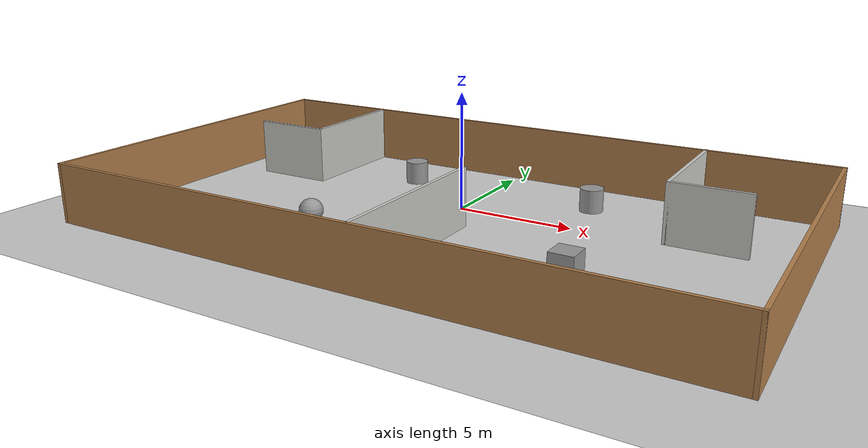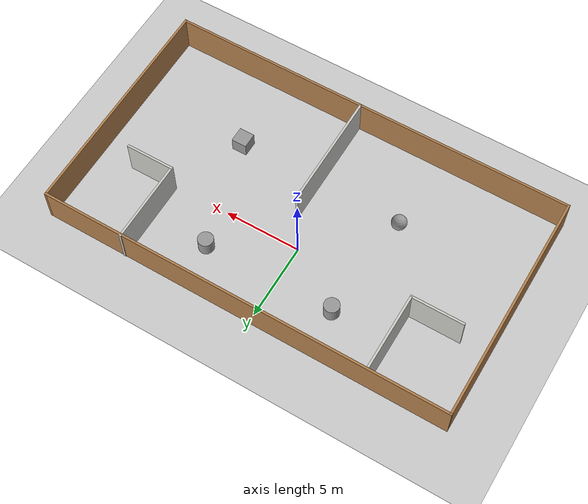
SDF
<sdf version="1.7">
 <world name="default">
  <light name="sun" type="directional">
   <pose>0 0 10 0 -0 0</pose>
   <diffuse>0.8 0.8 0.8 1</diffuse>
   <specular>0.2 0.2 0.2 1</specular>
   <attenuation>
    <range>1000</range>
    <constant>0.9</constant>
    <linear>0.01</linear>
    <quadratic>0.001</quadratic>
   </attenuation>
   <direction>-0.5 0.1 -0.9</direction>
   <spot><inner_angle>0</inner_angle><outer_angle>0</outer_angle><falloff>0</falloff></spot>
  </light>
  <model name="ground_plane">
   <static>1</static>
   <link name="link">
    <collision name="collision">
     <geometry><plane><normal>0 0 1</normal><size>100 100</size></plane></geometry>
     <surface>
      <contact><collide_bitmask>65535</collide_bitmask></contact>
      <friction><ode><mu>100</mu><mu2>50</mu2></ode></friction>
     </surface>
    </collision>
    <visual name="visual">
     <cast_shadows>0</cast_shadows>
     <geometry><plane><normal>0 0 1</normal><size>100 100</size></plane></geometry>
     <material>
      <script><uri>file://media/materials/scripts/gazebo.material</uri><name>Gazebo/Grey</name></script>
     </material>
    </visual>
   </link>
  </model>
  <gravity>0 0 -9.8</gravity>
  <magnetic_field>6e-06 2.3e-05 -4.2e-05</magnetic_field>
  <atmosphere type="adiabatic"/>
  <physics type="ode">
   <max_step_size>0.001</max_step_size>
   <real_time_factor>1</real_time_factor>
   <real_time_update_rate>1000</real_time_update_rate>
  </physics>
  <scene><ambient>0.4 0.4 0.4 1</ambient><background>0.7 0.7 0.7 1</background><shadows>1</shadows></scene>
  <spherical_coordinates>
   <surface_model>EARTH_WGS84</surface_model>
   <latitude_deg>0</latitude_deg>
   <longitude_deg>0</longitude_deg>
   <elevation>0</elevation>
   <heading_deg>0</heading_deg>
  </spherical_coordinates>
  <model name="house">
   <pose>0.5888 -2.00645 0 0 -0 0</pose>
   <link name="Wall_1">
    <collision name="Wall_1_Collision">
     <geometry><box><size>15.25 0.15 2.5</size></box></geometry>
     <pose>0 0 1.25 0 -0 0</pose>
    </collision>
    <visual name="Wall_1_Visual">
     <pose>0 0 1.25 0 -0 0</pose>
     <geometry><box><size>15.25 0.15 2.5</size></box></geometry>
     <material>
      <script><uri>file://media/materials/scripts/gazebo.material</uri><name>Gazebo/Wood</name></script>
      <ambient>1 1 1 1</ambient>
     </material>
     <meta><layer>0</layer></meta>
    </visual>
    <pose>-13.55 -0.021242 0 0 -0 -1.5708</pose>
   </link>
   <link name="Wall_10">
    <collision name="Wall_10_Collision">
     <geometry><box><size>7.75 0.15 2.5</size></box></geometry>
     <pose>0 0 1.25 0 -0 0</pose>
    </collision>
    <visual name="Wall_10_Visual">
     <pose>0 0 1.25 0 -0 0</pose>
     <geometry><box><size>7.75 0.15 2.5</size></box></geometry>
     <material>
      <script><uri>file://media/materials/scripts/gazebo.material</uri><name>Gazebo/CeilingTiled</name></script>
      <ambient>1 1 1 1</ambient>
     </material>
     <meta><layer>0</layer></meta>
    </visual>
    <pose>0.585848 -3.70309 0 0 -0 1.5708</pose>
   </link>
   <link name="Wall_12">
    <collision name="Wall_12_Collision">
     <geometry><box><size>5.5 0.15 2.5</size></box></geometry>
     <pose>0 0 1.25 0 -0 0</pose>
    </collision>
    <visual name="Wall_12_Visual">
     <pose>0 0 1.25 0 -0 0</pose>
     <geometry><box><size>5.5 0.15 2.5</size></box></geometry>
     <material>
      <script><uri>file://media/materials/scripts/gazebo.material</uri><name>Gazebo/CeilingTiled</name></script>
      <ambient>1 1 1 1</ambient>
     </material>
     <meta><layer>0</layer></meta>
    </visual>
    <pose>8.12301 4.89624 0 0 -0 -1.5708</pose>
   </link>
   <link name="Wall_13">
    <collision name="Wall_13_Collision">
     <geometry><box><size>3.25 0.15 2.5</size></box></geometry>
     <pose>0 0 1.25 0 -0 0</pose>
    </collision>
    <visual name="Wall_13_Visual">
     <pose>0 0 1.25 0 -0 0</pose>
     <geometry><box><size>3.25 0.15 2.5</size></box></geometry>
     <material>
      <script><uri>file://media/materials/scripts/gazebo.material</uri><name>Gazebo/CeilingTiled</name></script>
      <ambient>1 1 1 1</ambient>
     </material>
     <meta><layer>0</layer></meta>
    </visual>
    <pose>9.67301 2.22124 0 0 -0 0</pose>
   </link>
   <link name="Wall_2">
    <collision name="Wall_2_Collision">
     <geometry><box><size>27.25 0.15 2.5</size></box></geometry>
     <pose>0 0 1.25 0 -0 0</pose>
    </collision>
    <visual name="Wall_2_Visual">
     <pose>0 0 1.25 0 -0 0</pose>
     <geometry><box><size>27.25 0.15 2.5</size></box></geometry>
     <material>
      <script><uri>file://media/materials/scripts/gazebo.material</uri><name>Gazebo/Wood</name></script>
      <ambient>1 1 1 1</ambient>
     </material>
     <meta><layer>0</layer></meta>
    </visual>
    <pose>0 -7.57124 0 0 -0 0</pose>
   </link>
   <link name="Wall_3">
    <collision name="Wall_3_Collision">
     <geometry><box><size>15.25 0.15 2.5</size></box></geometry>
     <pose>0 0 1.25 0 -0 0</pose>
    </collision>
    <visual name="Wall_3_Visual">
     <pose>0 0 1.25 0 -0 0</pose>
     <geometry><box><size>15.25 0.15 2.5</size></box></geometry>
     <material>
      <script><uri>file://media/materials/scripts/gazebo.material</uri><name>Gazebo/Wood</name></script>
      <ambient>1 1 1 1</ambient>
     </material>
     <meta><layer>0</layer></meta>
    </visual>
    <pose>13.55 -0.021242 0 0 -0 1.5708</pose>
   </link>
   <link name="Wall_4">
    <collision name="Wall_4_Collision">
     <geometry><box><size>27.25 0.15 2.5</size></box></geometry>
     <pose>0 0 1.25 0 -0 0</pose>
    </collision>
    <visual name="Wall_4_Visual">
     <pose>0 0 1.25 0 -0 0</pose>
     <geometry><box><size>27.25 0.15 2.5</size></box></geometry>
     <material>
      <script><uri>file://media/materials/scripts/gazebo.material</uri><name>Gazebo/Wood</name></script>
      <ambient>1 1 1 1</ambient>
     </material>
     <meta><layer>0</layer></meta>
    </visual>
    <pose>0 7.52876 0 0 -0 3.14159</pose>
   </link>
   <link name="Wall_6">
    <collision name="Wall_6_Collision">
     <geometry><box><size>5.25 0.15 2.5</size></box></geometry>
     <pose>0 0 1.25 0 -0 0</pose>
    </collision>
    <visual name="Wall_6_Visual">
     <pose>0 0 1.25 0 -0 0</pose>
     <geometry><box><size>5.25 0.15 2.5</size></box></geometry>
     <material>
      <script><uri>file://media/materials/scripts/gazebo.material</uri><name>Gazebo/CeilingTiled</name></script>
      <ambient>1 1 1 1</ambient>
     </material>
     <meta><layer>0</layer></meta>
    </visual>
    <pose>-8.35857 4.9566 0 0 -0 -1.5708</pose>
   </link>
   <link name="Wall_7">
    <collision name="Wall_7_Collision">
     <geometry><box><size>3.5 0.15 2.5</size></box></geometry>
     <pose>0 0 1.25 0 -0 0</pose>
    </collision>
    <visual name="Wall_7_Visual">
     <pose>0 0 1.25 0 -0 0</pose>
     <geometry><box><size>3.5 0.15 2.5</size></box></geometry>
     <material>
      <script><uri>file://media/materials/scripts/gazebo.material</uri><name>Gazebo/CeilingTiled</name></script>
      <ambient>1 1 1 1</ambient>
     </material>
     <meta><layer>0</layer></meta>
    </visual>
    <pose>-10.0336 2.4066 0 0 -0 3.14159</pose>
   </link>
   <static>1</static>
  </model>
  <model name="unit_sphere">
   <pose>-4.44607 -4.52784 0.5 0 -0 0</pose>
   <link name="link">
    <inertial>
     <mass>1</mass>
     <inertia><ixx>0.1</ixx><ixy>0</ixy><ixz>0</ixz><iyy>0.1</iyy><iyz>0</iyz><izz>0.1</izz></inertia>
    </inertial>
    <collision name="collision"><geometry><sphere><radius>0.5</radius></sphere></geometry></collision>
    <visual name="visual">
     <geometry><sphere><radius>0.5</radius></sphere></geometry>
     <material>
      <script><name>Gazebo/Grey</name><uri>file://media/materials/scripts/gazebo.material</uri></script>
     </material>
    </visual>
   </link>
  </model>
  <model name="unit_cylinder">
   <pose>4.83279 2.61906 0.499997 3e-06 4e-06 -0</pose>
   <link name="link">
    <inertial>
     <mass>1</mass>
     <inertia><ixx>0.145833</ixx><ixy>0</ixy><ixz>0</ixz><iyy>0.145833</iyy><iyz>0</iyz><izz>0.125</izz></inertia>
    </inertial>
    <collision name="collision">
     <geometry><cylinder><radius>0.5</radius><length>1</length></cylinder></geometry>
    </collision>
    <visual name="visual">
     <geometry><cylinder><radius>0.5</radius><length>1</length></cylinder></geometry>
     <material>
      <script><name>Gazebo/Grey</name><uri>file://media/materials/scripts/gazebo.material</uri></script>
     </material>
    </visual>
   </link>
  </model>
  <model name="unit_box">
   <pose>6.75282 -4.63406 0.499995 -1e-05 -0 0</pose>
   <link name="link">
    <inertial>
     <mass>1</mass>
     <inertia>
      <ixx>0.166667</ixx>
      <ixy>0</ixy>
      <ixz>0</ixz>
      <iyy>0.166667</iyy>
      <iyz>0</iyz>
      <izz>0.166667</izz>
     </inertia>
    </inertial>
    <collision name="collision"><geometry><box><size>1 1 1</size></box></geometry></collision>
    <visual name="visual">
     <geometry><box><size>1 1 1</size></box></geometry>
     <material>
      <script><name>Gazebo/Grey</name><uri>file://media/materials/scripts/gazebo.material</uri></script>
     </material>
    </visual>
   </link>
  </model>
  <model name="unit_cylinder_0">
   <pose>-3.82795 2.55186 0.499997 3e-06 4e-06 -0</pose>
   <link name="link">
    <inertial>
     <mass>1</mass>
     <inertia><ixx>0.145833</ixx><ixy>0</ixy><ixz>0</ixz><iyy>0.145833</iyy><iyz>0</iyz><izz>0.125</izz></inertia>
    </inertial>
    <collision name="collision">
     <geometry><cylinder><radius>0.5</radius><length>1</length></cylinder></geometry>
    </collision>
    <visual name="visual">
     <geometry><cylinder><radius>0.5</radius><length>1</length></cylinder></geometry>
     <material>
      <script><name>Gazebo/Grey</name><uri>file://media/materials/scripts/gazebo.material</uri></script>
     </material>
    </visual>
   </link>
  </model>
 </world>
</sdf>
